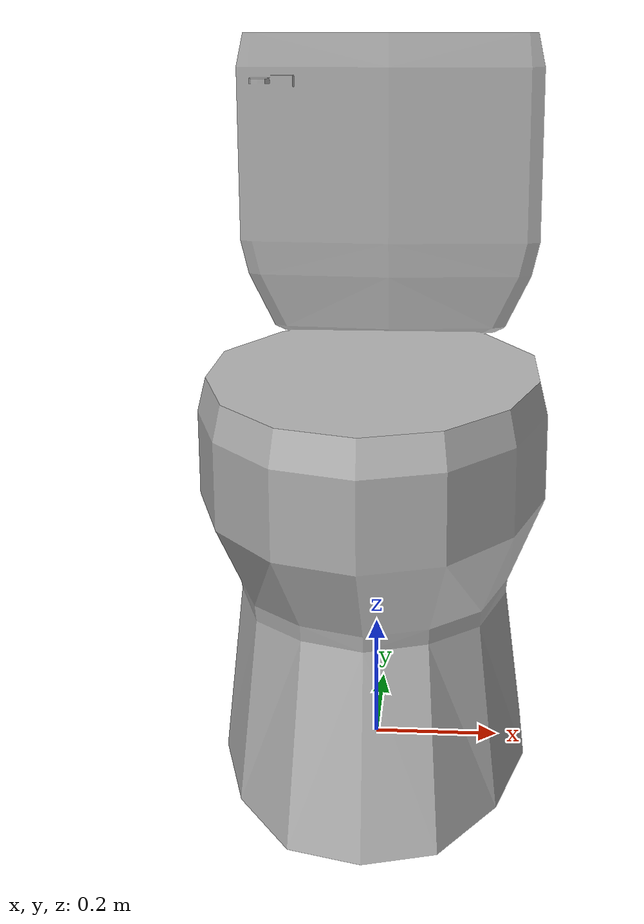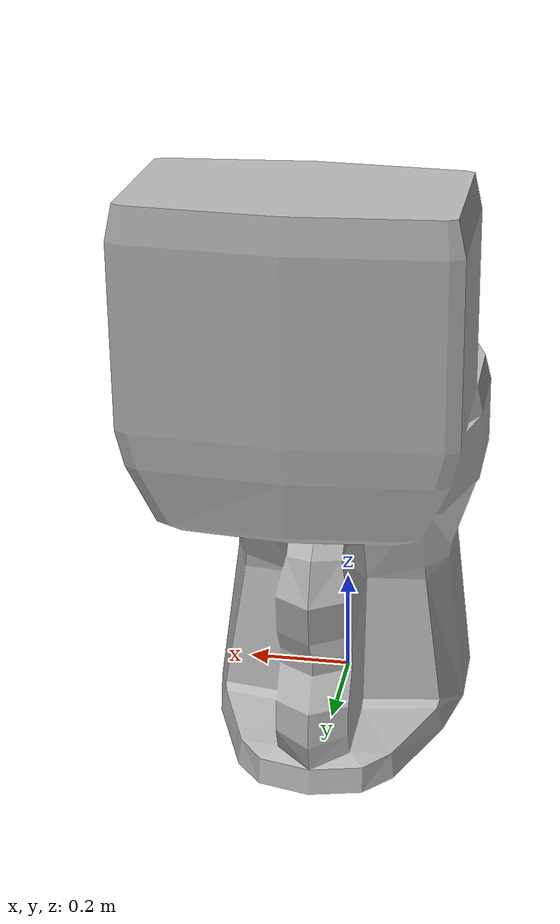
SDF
<?xml version="1.0" ?>
<sdf version="1.5">
  <model name="toilet">
    <static>true</static>
    <link name="link">
      <collision name="collision">
        <pose>-0.003873 0.134001 0.582097 0 0 0</pose>
        <geometry>
          <box>
            <size>0.551631 1.094060 1.182180</size>
          </box>
        </geometry>
      </collision>
      <visual name="visual">
        <geometry>
          <mesh>
            <uri>model://toilet/meshes/toilet.dae</uri>
            <scale>1.4 1.4 1.4</scale>
          </mesh>
        </geometry>
      </visual>
    </link>
  </model>
</sdf>
